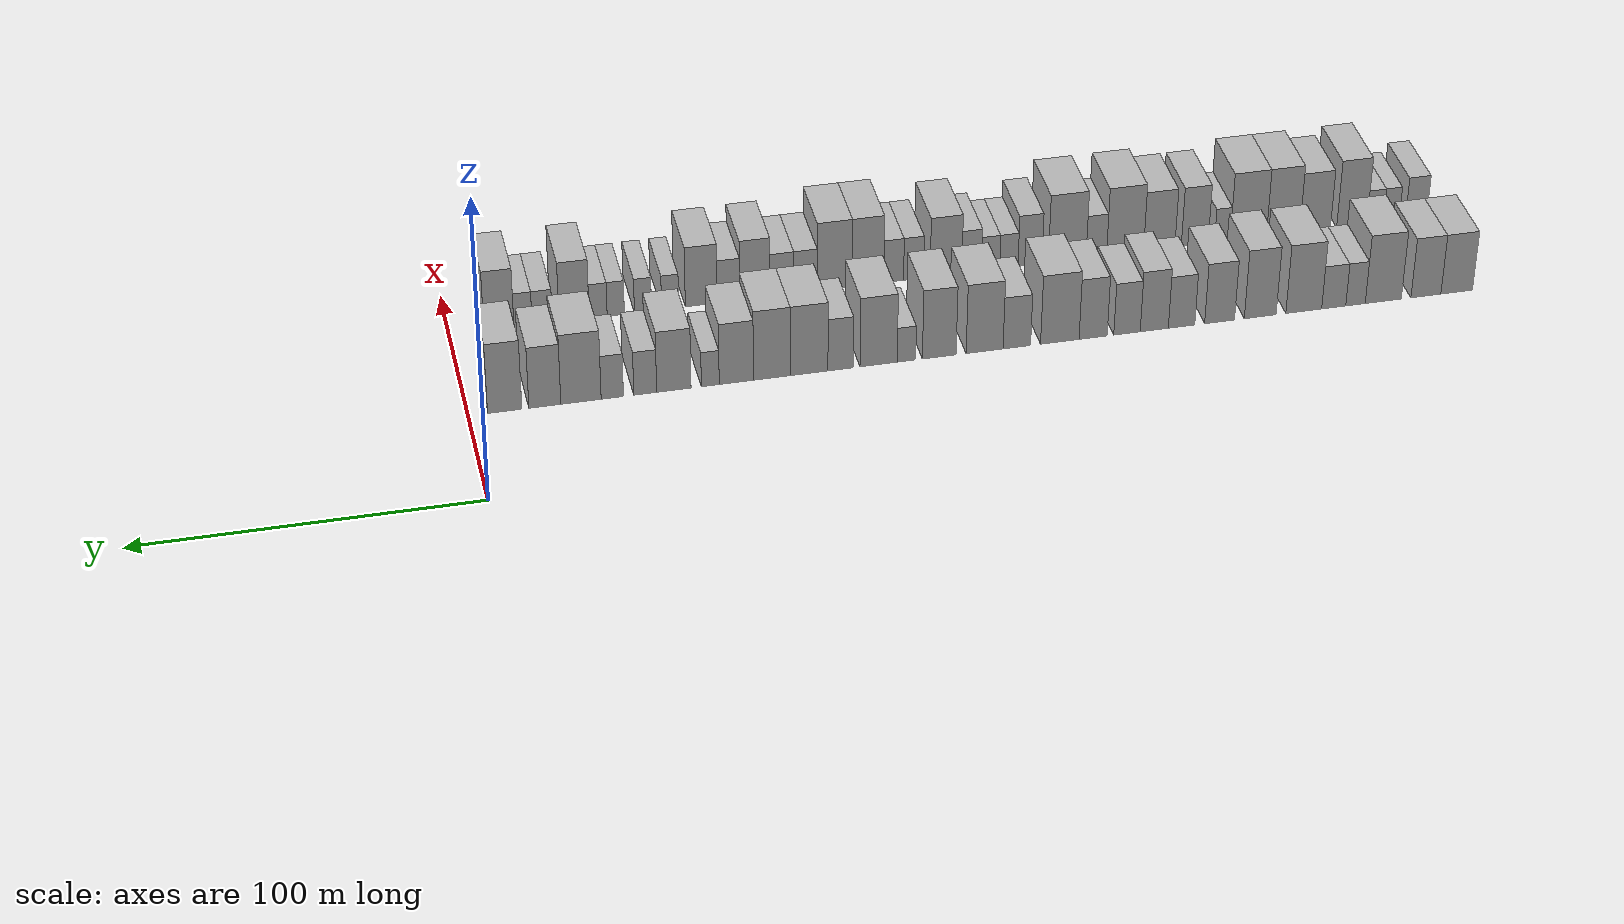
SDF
<sdf version="1.6">
 <world name="default">
  <model name="building_1">
   <static>1</static>
   <pose>50.0000 -295.0682 0 0.000000 0.000000 0.000000</pose>
   <link name="link">
    <pose>0 0 10.50 0 0 0</pose>
    <collision name="collision"><geometry><box><size>20.0000 9.8636 21.0000</size></box></geometry></collision>
    <visual name="visual">
     <cast_shadows>0</cast_shadows>
     <geometry><box><size>20.0000 9.8636 21.0000</size></box></geometry>
     <material>
      <script>
       <uri>model://HANNAS_wall/materials/scripts</uri>
       <uri>model://HANNAS_wall/materials/textures</uri>
       <name>vrc/HANNAS_wall</name>
      </script>
     </material>
    </visual>
   </link>
  </model>
  <model name="building_2">
   <static>1</static>
   <pose>50.0000 -285.4610 0 0.000000 0.000000 0.000000</pose>
   <link name="link">
    <pose>0 0 10.50 0 0 0</pose>
    <collision name="collision"><geometry><box><size>20.0000 9.3509 21.0000</size></box></geometry></collision>
    <visual name="visual">
     <cast_shadows>0</cast_shadows>
     <geometry><box><size>20.0000 9.3509 21.0000</size></box></geometry>
     <material>
      <script>
       <uri>model://HANNAS_wall/materials/scripts</uri>
       <uri>model://HANNAS_wall/materials/textures</uri>
       <name>vrc/HANNAS_wall</name>
      </script>
     </material>
    </visual>
   </link>
  </model>
  <model name="building_3">
   <static>1</static>
   <pose>50.0000 -272.1908 0 0.000000 0.000000 0.000000</pose>
   <link name="link">
    <pose>0 0 12.00 0 0 0</pose>
    <collision name="collision"><geometry><box><size>20.0000 11.1894 24.0000</size></box></geometry></collision>
    <visual name="visual">
     <cast_shadows>0</cast_shadows>
     <geometry><box><size>20.0000 11.1894 24.0000</size></box></geometry>
     <material>
      <script>
       <uri>model://HANNAS_wall/materials/scripts</uri>
       <uri>model://HANNAS_wall/materials/textures</uri>
       <name>vrc/HANNAS_wall</name>
      </script>
     </material>
    </visual>
   </link>
  </model>
  <model name="building_4">
   <static>1</static>
   <pose>50.0000 -263.5860 0 0.000000 0.000000 0.000000</pose>
   <link name="link">
    <pose>0 0 7.50 0 0 0</pose>
    <collision name="collision"><geometry><box><size>20.0000 6.0203 15.0000</size></box></geometry></collision>
    <visual name="visual">
     <cast_shadows>0</cast_shadows>
     <geometry><box><size>20.0000 6.0203 15.0000</size></box></geometry>
     <material>
      <script>
       <uri>model://HANNAS_wall/materials/scripts</uri>
       <uri>model://HANNAS_wall/materials/textures</uri>
       <name>vrc/HANNAS_wall</name>
      </script>
     </material>
    </visual>
   </link>
  </model>
  <model name="building_5">
   <static>1</static>
   <pose>50.0000 -256.8483 0 0.000000 0.000000 0.000000</pose>
   <link name="link">
    <pose>0 0 7.50 0 0 0</pose>
    <collision name="collision"><geometry><box><size>20.0000 7.4551 15.0000</size></box></geometry></collision>
    <visual name="visual">
     <cast_shadows>0</cast_shadows>
     <geometry><box><size>20.0000 7.4551 15.0000</size></box></geometry>
     <material>
      <script>
       <uri>model://HANNAS_wall/materials/scripts</uri>
       <uri>model://HANNAS_wall/materials/textures</uri>
       <name>vrc/HANNAS_wall</name>
      </script>
     </material>
    </visual>
   </link>
  </model>
  <model name="building_6">
   <static>1</static>
   <pose>50.0000 -247.6045 0 0.000000 0.000000 0.000000</pose>
   <link name="link">
    <pose>0 0 12.00 0 0 0</pose>
    <collision name="collision"><geometry><box><size>20.0000 11.0326 24.0000</size></box></geometry></collision>
    <visual name="visual">
     <cast_shadows>0</cast_shadows>
     <geometry><box><size>20.0000 11.0326 24.0000</size></box></geometry>
     <material>
      <script>
       <uri>model://HANNAS_wall/materials/scripts</uri>
       <uri>model://HANNAS_wall/materials/textures</uri>
       <name>vrc/HANNAS_wall</name>
      </script>
     </material>
    </visual>
   </link>
  </model>
  <model name="building_7">
   <static>1</static>
   <pose>50.0000 -234.2072 0 0.000000 0.000000 0.000000</pose>
   <link name="link">
    <pose>0 0 12.00 0 0 0</pose>
    <collision name="collision"><geometry><box><size>20.0000 9.7619 24.0000</size></box></geometry></collision>
    <visual name="visual">
     <cast_shadows>0</cast_shadows>
     <geometry><box><size>20.0000 9.7619 24.0000</size></box></geometry>
     <material>
      <script>
       <uri>model://HANNAS_wall/materials/scripts</uri>
       <uri>model://HANNAS_wall/materials/textures</uri>
       <name>vrc/HANNAS_wall</name>
      </script>
     </material>
    </visual>
   </link>
  </model>
  <model name="building_8">
   <static>1</static>
   <pose>50.0000 -221.7563 0 0.000000 0.000000 0.000000</pose>
   <link name="link">
    <pose>0 0 10.50 0 0 0</pose>
    <collision name="collision"><geometry><box><size>20.0000 9.1400 21.0000</size></box></geometry></collision>
    <visual name="visual">
     <cast_shadows>0</cast_shadows>
     <geometry><box><size>20.0000 9.1400 21.0000</size></box></geometry>
     <material>
      <script>
       <uri>model://HANNAS_wall/materials/scripts</uri>
       <uri>model://HANNAS_wall/materials/textures</uri>
       <name>vrc/HANNAS_wall</name>
      </script>
     </material>
    </visual>
   </link>
  </model>
  <model name="building_9">
   <static>1</static>
   <pose>50.0000 -210.1605 0 0.000000 0.000000 0.000000</pose>
   <link name="link">
    <pose>0 0 9.00 0 0 0</pose>
    <collision name="collision"><geometry><box><size>20.0000 8.0516 18.0000</size></box></geometry></collision>
    <visual name="visual">
     <cast_shadows>0</cast_shadows>
     <geometry><box><size>20.0000 8.0516 18.0000</size></box></geometry>
     <material>
      <script>
       <uri>model://HANNAS_wall/materials/scripts</uri>
       <uri>model://HANNAS_wall/materials/textures</uri>
       <name>vrc/HANNAS_wall</name>
      </script>
     </material>
    </visual>
   </link>
  </model>
  <model name="building_10">
   <static>1</static>
   <pose>50.0000 -201.8619 0 0.000000 0.000000 0.000000</pose>
   <link name="link">
    <pose>0 0 10.50 0 0 0</pose>
    <collision name="collision"><geometry><box><size>20.0000 8.5455 21.0000</size></box></geometry></collision>
    <visual name="visual">
     <cast_shadows>0</cast_shadows>
     <geometry><box><size>20.0000 8.5455 21.0000</size></box></geometry>
     <material>
      <script>
       <uri>model://HANNAS_wall/materials/scripts</uri>
       <uri>model://HANNAS_wall/materials/textures</uri>
       <name>vrc/HANNAS_wall</name>
      </script>
     </material>
    </visual>
   </link>
  </model>
  <model name="building_11">
   <static>1</static>
   <pose>50.0000 -193.5754 0 0.000000 0.000000 0.000000</pose>
   <link name="link">
    <pose>0 0 9.00 0 0 0</pose>
    <collision name="collision"><geometry><box><size>20.0000 8.0274 18.0000</size></box></geometry></collision>
    <visual name="visual">
     <cast_shadows>0</cast_shadows>
     <geometry><box><size>20.0000 8.0274 18.0000</size></box></geometry>
     <material>
      <script>
       <uri>model://HANNAS_wall/materials/scripts</uri>
       <uri>model://HANNAS_wall/materials/textures</uri>
       <name>vrc/HANNAS_wall</name>
      </script>
     </material>
    </visual>
   </link>
  </model>
  <model name="building_12">
   <static>1</static>
   <pose>50.0000 -183.3138 0 0.000000 0.000000 0.000000</pose>
   <link name="link">
    <pose>0 0 10.50 0 0 0</pose>
    <collision name="collision"><geometry><box><size>20.0000 8.4959 21.0000</size></box></geometry></collision>
    <visual name="visual">
     <cast_shadows>0</cast_shadows>
     <geometry><box><size>20.0000 8.4959 21.0000</size></box></geometry>
     <material>
      <script>
       <uri>model://HANNAS_wall/materials/scripts</uri>
       <uri>model://HANNAS_wall/materials/textures</uri>
       <name>vrc/HANNAS_wall</name>
      </script>
     </material>
    </visual>
   </link>
  </model>
  <model name="building_13">
   <static>1</static>
   <pose>50.0000 -173.2645 0 0.000000 0.000000 0.000000</pose>
   <link name="link">
    <pose>0 0 12.00 0 0 0</pose>
    <collision name="collision"><geometry><box><size>20.0000 11.6026 24.0000</size></box></geometry></collision>
    <visual name="visual">
     <cast_shadows>0</cast_shadows>
     <geometry><box><size>20.0000 11.6026 24.0000</size></box></geometry>
     <material>
      <script>
       <uri>model://HANNAS_wall/materials/scripts</uri>
       <uri>model://HANNAS_wall/materials/textures</uri>
       <name>vrc/HANNAS_wall</name>
      </script>
     </material>
    </visual>
   </link>
  </model>
  <model name="building_14">
   <static>1</static>
   <pose>50.0000 -160.3290 0 0.000000 0.000000 0.000000</pose>
   <link name="link">
    <pose>0 0 9.00 0 0 0</pose>
    <collision name="collision"><geometry><box><size>20.0000 8.2686 18.0000</size></box></geometry></collision>
    <visual name="visual">
     <cast_shadows>0</cast_shadows>
     <geometry><box><size>20.0000 8.2686 18.0000</size></box></geometry>
     <material>
      <script>
       <uri>model://HANNAS_wall/materials/scripts</uri>
       <uri>model://HANNAS_wall/materials/textures</uri>
       <name>vrc/HANNAS_wall</name>
      </script>
     </material>
    </visual>
   </link>
  </model>
  <model name="building_15">
   <static>1</static>
   <pose>50.0000 -150.6718 0 0.000000 0.000000 0.000000</pose>
   <link name="link">
    <pose>0 0 12.00 0 0 0</pose>
    <collision name="collision"><geometry><box><size>20.0000 11.0457 24.0000</size></box></geometry></collision>
    <visual name="visual">
     <cast_shadows>0</cast_shadows>
     <geometry><box><size>20.0000 11.0457 24.0000</size></box></geometry>
     <material>
      <script>
       <uri>model://HANNAS_wall/materials/scripts</uri>
       <uri>model://HANNAS_wall/materials/textures</uri>
       <name>vrc/HANNAS_wall</name>
      </script>
     </material>
    </visual>
   </link>
  </model>
  <model name="building_16">
   <static>1</static>
   <pose>50.0000 -137.1305 0 0.000000 0.000000 0.000000</pose>
   <link name="link">
    <pose>0 0 12.00 0 0 0</pose>
    <collision name="collision"><geometry><box><size>20.0000 10.0370 24.0000</size></box></geometry></collision>
    <visual name="visual">
     <cast_shadows>0</cast_shadows>
     <geometry><box><size>20.0000 10.0370 24.0000</size></box></geometry>
     <material>
      <script>
       <uri>model://HANNAS_wall/materials/scripts</uri>
       <uri>model://HANNAS_wall/materials/textures</uri>
       <name>vrc/HANNAS_wall</name>
      </script>
     </material>
    </visual>
   </link>
  </model>
  <model name="building_17">
   <static>1</static>
   <pose>50.0000 -127.3615 0 0.000000 0.000000 0.000000</pose>
   <link name="link">
    <pose>0 0 6.00 0 0 0</pose>
    <collision name="collision"><geometry><box><size>20.0000 5.5009 12.0000</size></box></geometry></collision>
    <visual name="visual">
     <cast_shadows>0</cast_shadows>
     <geometry><box><size>20.0000 5.5009 12.0000</size></box></geometry>
     <material>
      <script>
       <uri>model://HANNAS_wall/materials/scripts</uri>
       <uri>model://HANNAS_wall/materials/textures</uri>
       <name>vrc/HANNAS_wall</name>
      </script>
     </material>
    </visual>
   </link>
  </model>
  <model name="building_18">
   <static>1</static>
   <pose>50.0000 -119.1126 0 0.000000 0.000000 0.000000</pose>
   <link name="link">
    <pose>0 0 12.00 0 0 0</pose>
    <collision name="collision"><geometry><box><size>20.0000 10.9968 24.0000</size></box></geometry></collision>
    <visual name="visual">
     <cast_shadows>0</cast_shadows>
     <geometry><box><size>20.0000 10.9968 24.0000</size></box></geometry>
     <material>
      <script>
       <uri>model://HANNAS_wall/materials/scripts</uri>
       <uri>model://HANNAS_wall/materials/textures</uri>
       <name>vrc/HANNAS_wall</name>
      </script>
     </material>
    </visual>
   </link>
  </model>
  <model name="building_19">
   <static>1</static>
   <pose>50.0000 -107.8722 0 0.000000 0.000000 0.000000</pose>
   <link name="link">
    <pose>0 0 9.00 0 0 0</pose>
    <collision name="collision"><geometry><box><size>20.0000 7.4841 18.0000</size></box></geometry></collision>
    <visual name="visual">
     <cast_shadows>0</cast_shadows>
     <geometry><box><size>20.0000 7.4841 18.0000</size></box></geometry>
     <material>
      <script>
       <uri>model://HANNAS_wall/materials/scripts</uri>
       <uri>model://HANNAS_wall/materials/textures</uri>
       <name>vrc/HANNAS_wall</name>
      </script>
     </material>
    </visual>
   </link>
  </model>
  <model name="building_20">
   <static>1</static>
   <pose>50.0000 -98.5903 0 0.000000 0.000000 0.000000</pose>
   <link name="link">
    <pose>0 0 12.00 0 0 0</pose>
    <collision name="collision"><geometry><box><size>20.0000 11.0796 24.0000</size></box></geometry></collision>
    <visual name="visual">
     <cast_shadows>0</cast_shadows>
     <geometry><box><size>20.0000 11.0796 24.0000</size></box></geometry>
     <material>
      <script>
       <uri>model://HANNAS_wall/materials/scripts</uri>
       <uri>model://HANNAS_wall/materials/textures</uri>
       <name>vrc/HANNAS_wall</name>
      </script>
     </material>
    </visual>
   </link>
  </model>
  <model name="building_21">
   <static>1</static>
   <pose>50.0000 -87.6464 0 0.000000 0.000000 0.000000</pose>
   <link name="link">
    <pose>0 0 12.00 0 0 0</pose>
    <collision name="collision"><geometry><box><size>20.0000 10.8083 24.0000</size></box></geometry></collision>
    <visual name="visual">
     <cast_shadows>0</cast_shadows>
     <geometry><box><size>20.0000 10.8083 24.0000</size></box></geometry>
     <material>
      <script>
       <uri>model://HANNAS_wall/materials/scripts</uri>
       <uri>model://HANNAS_wall/materials/textures</uri>
       <name>vrc/HANNAS_wall</name>
      </script>
     </material>
    </visual>
   </link>
  </model>
  <model name="building_22">
   <static>1</static>
   <pose>50.0000 -77.2396 0 0.000000 0.000000 0.000000</pose>
   <link name="link">
    <pose>0 0 10.50 0 0 0</pose>
    <collision name="collision"><geometry><box><size>20.0000 10.0054 21.0000</size></box></geometry></collision>
    <visual name="visual">
     <cast_shadows>0</cast_shadows>
     <geometry><box><size>20.0000 10.0054 21.0000</size></box></geometry>
     <material>
      <script>
       <uri>model://HANNAS_wall/materials/scripts</uri>
       <uri>model://HANNAS_wall/materials/textures</uri>
       <name>vrc/HANNAS_wall</name>
      </script>
     </material>
    </visual>
   </link>
  </model>
  <model name="building_23">
   <static>1</static>
   <pose>50.0000 -69.6298 0 0.000000 0.000000 0.000000</pose>
   <link name="link">
    <pose>0 0 6.00 0 0 0</pose>
    <collision name="collision"><geometry><box><size>20.0000 5.2142 12.0000</size></box></geometry></collision>
    <visual name="visual">
     <cast_shadows>0</cast_shadows>
     <geometry><box><size>20.0000 5.2142 12.0000</size></box></geometry>
     <material>
      <script>
       <uri>model://HANNAS_wall/materials/scripts</uri>
       <uri>model://HANNAS_wall/materials/textures</uri>
       <name>vrc/HANNAS_wall</name>
      </script>
     </material>
    </visual>
   </link>
  </model>
  <model name="building_24">
   <static>1</static>
   <pose>50.0000 -59.0268 0 0.000000 0.000000 0.000000</pose>
   <link name="link">
    <pose>0 0 10.50 0 0 0</pose>
    <collision name="collision"><geometry><box><size>20.0000 9.9916 21.0000</size></box></geometry></collision>
    <visual name="visual">
     <cast_shadows>0</cast_shadows>
     <geometry><box><size>20.0000 9.9916 21.0000</size></box></geometry>
     <material>
      <script>
       <uri>model://HANNAS_wall/materials/scripts</uri>
       <uri>model://HANNAS_wall/materials/textures</uri>
       <name>vrc/HANNAS_wall</name>
      </script>
     </material>
    </visual>
   </link>
  </model>
  <model name="building_25">
   <static>1</static>
   <pose>50.0000 -50.7129 0 0.000000 0.000000 0.000000</pose>
   <link name="link">
    <pose>0 0 7.50 0 0 0</pose>
    <collision name="collision"><geometry><box><size>20.0000 6.6363 15.0000</size></box></geometry></collision>
    <visual name="visual">
     <cast_shadows>0</cast_shadows>
     <geometry><box><size>20.0000 6.6363 15.0000</size></box></geometry>
     <material>
      <script>
       <uri>model://HANNAS_wall/materials/scripts</uri>
       <uri>model://HANNAS_wall/materials/textures</uri>
       <name>vrc/HANNAS_wall</name>
      </script>
     </material>
    </visual>
   </link>
  </model>
  <model name="building_26">
   <static>1</static>
   <pose>50.0000 -41.1723 0 0.000000 0.000000 0.000000</pose>
   <link name="link">
    <pose>0 0 7.50 0 0 0</pose>
    <collision name="collision"><geometry><box><size>20.0000 6.4449 15.0000</size></box></geometry></collision>
    <visual name="visual">
     <cast_shadows>0</cast_shadows>
     <geometry><box><size>20.0000 6.4449 15.0000</size></box></geometry>
     <material>
      <script>
       <uri>model://HANNAS_wall/materials/scripts</uri>
       <uri>model://HANNAS_wall/materials/textures</uri>
       <name>vrc/HANNAS_wall</name>
      </script>
     </material>
    </visual>
   </link>
  </model>
  <model name="building_27">
   <static>1</static>
   <pose>50.0000 -32.1390 0 0.000000 0.000000 0.000000</pose>
   <link name="link">
    <pose>0 0 12.00 0 0 0</pose>
    <collision name="collision"><geometry><box><size>20.0000 11.6217 24.0000</size></box></geometry></collision>
    <visual name="visual">
     <cast_shadows>0</cast_shadows>
     <geometry><box><size>20.0000 11.6217 24.0000</size></box></geometry>
     <material>
      <script>
       <uri>model://HANNAS_wall/materials/scripts</uri>
       <uri>model://HANNAS_wall/materials/textures</uri>
       <name>vrc/HANNAS_wall</name>
      </script>
     </material>
    </visual>
   </link>
  </model>
  <model name="building_28">
   <static>1</static>
   <pose>50.0000 -21.7275 0 0.000000 0.000000 0.000000</pose>
   <link name="link">
    <pose>0 0 10.50 0 0 0</pose>
    <collision name="collision"><geometry><box><size>20.0000 9.2012 21.0000</size></box></geometry></collision>
    <visual name="visual">
     <cast_shadows>0</cast_shadows>
     <geometry><box><size>20.0000 9.2012 21.0000</size></box></geometry>
     <material>
      <script>
       <uri>model://HANNAS_wall/materials/scripts</uri>
       <uri>model://HANNAS_wall/materials/textures</uri>
       <name>vrc/HANNAS_wall</name>
      </script>
     </material>
    </visual>
   </link>
  </model>
  <model name="building_29">
   <static>1</static>
   <pose>50.0000 -10.2129 0 0.000000 0.000000 0.000000</pose>
   <link name="link">
    <pose>0 0 12.00 0 0 0</pose>
    <collision name="collision"><geometry><box><size>20.0000 9.8280 24.0000</size></box></geometry></collision>
    <visual name="visual">
     <cast_shadows>0</cast_shadows>
     <geometry><box><size>20.0000 9.8280 24.0000</size></box></geometry>
     <material>
      <script>
       <uri>model://HANNAS_wall/materials/scripts</uri>
       <uri>model://HANNAS_wall/materials/textures</uri>
       <name>vrc/HANNAS_wall</name>
      </script>
     </material>
    </visual>
   </link>
  </model>
  <model name="building_64">
   <static>1</static>
   <pose>90.0000 -296.5883 0 0.000000 0.000000 0.000000</pose>
   <link name="link">
    <pose>0 0 7.50 0 0 0</pose>
    <collision name="collision"><geometry><box><size>20.0000 6.8235 15.0000</size></box></geometry></collision>
    <visual name="visual">
     <cast_shadows>0</cast_shadows>
     <geometry><box><size>20.0000 6.8235 15.0000</size></box></geometry>
     <material>
      <script>
       <uri>model://HANNAS_wall/materials/scripts</uri>
       <uri>model://HANNAS_wall/materials/textures</uri>
       <name>vrc/HANNAS_wall</name>
      </script>
     </material>
    </visual>
   </link>
  </model>
  <model name="building_65">
   <static>1</static>
   <pose>90.0000 -288.6472 0 0.000000 0.000000 0.000000</pose>
   <link name="link">
    <pose>0 0 6.00 0 0 0</pose>
    <collision name="collision"><geometry><box><size>20.0000 5.0587 12.0000</size></box></geometry></collision>
    <visual name="visual">
     <cast_shadows>0</cast_shadows>
     <geometry><box><size>20.0000 5.0587 12.0000</size></box></geometry>
     <material>
      <script>
       <uri>model://HANNAS_wall/materials/scripts</uri>
       <uri>model://HANNAS_wall/materials/textures</uri>
       <name>vrc/HANNAS_wall</name>
      </script>
     </material>
    </visual>
   </link>
  </model>
  <model name="building_66">
   <static>1</static>
   <pose>90.0000 -283.4726 0 0.000000 0.000000 0.000000</pose>
   <link name="link">
    <pose>0 0 6.00 0 0 0</pose>
    <collision name="collision"><geometry><box><size>20.0000 5.2905 12.0000</size></box></geometry></collision>
    <visual name="visual">
     <cast_shadows>0</cast_shadows>
     <geometry><box><size>20.0000 5.2905 12.0000</size></box></geometry>
     <material>
      <script>
       <uri>model://HANNAS_wall/materials/scripts</uri>
       <uri>model://HANNAS_wall/materials/textures</uri>
       <name>vrc/HANNAS_wall</name>
      </script>
     </material>
    </visual>
   </link>
  </model>
  <model name="building_67">
   <static>1</static>
   <pose>90.0000 -276.0189 0 0.000000 0.000000 0.000000</pose>
   <link name="link">
    <pose>0 0 12.00 0 0 0</pose>
    <collision name="collision"><geometry><box><size>20.0000 9.6170 24.0000</size></box></geometry></collision>
    <visual name="visual">
     <cast_shadows>0</cast_shadows>
     <geometry><box><size>20.0000 9.6170 24.0000</size></box></geometry>
     <material>
      <script>
       <uri>model://HANNAS_wall/materials/scripts</uri>
       <uri>model://HANNAS_wall/materials/textures</uri>
       <name>vrc/HANNAS_wall</name>
      </script>
     </material>
    </visual>
   </link>
  </model>
  <model name="building_68">
   <static>1</static>
   <pose>90.0000 -264.3251 0 0.000000 0.000000 0.000000</pose>
   <link name="link">
    <pose>0 0 10.50 0 0 0</pose>
    <collision name="collision"><geometry><box><size>20.0000 9.7707 21.0000</size></box></geometry></collision>
    <visual name="visual">
     <cast_shadows>0</cast_shadows>
     <geometry><box><size>20.0000 9.7707 21.0000</size></box></geometry>
     <material>
      <script>
       <uri>model://HANNAS_wall/materials/scripts</uri>
       <uri>model://HANNAS_wall/materials/textures</uri>
       <name>vrc/HANNAS_wall</name>
      </script>
     </material>
    </visual>
   </link>
  </model>
  <model name="building_69">
   <static>1</static>
   <pose>90.0000 -254.1776 0 0.000000 0.000000 0.000000</pose>
   <link name="link">
    <pose>0 0 12.00 0 0 0</pose>
    <collision name="collision"><geometry><box><size>20.0000 10.5243 24.0000</size></box></geometry></collision>
    <visual name="visual">
     <cast_shadows>0</cast_shadows>
     <geometry><box><size>20.0000 10.5243 24.0000</size></box></geometry>
     <material>
      <script>
       <uri>model://HANNAS_wall/materials/scripts</uri>
       <uri>model://HANNAS_wall/materials/textures</uri>
       <name>vrc/HANNAS_wall</name>
      </script>
     </material>
    </visual>
   </link>
  </model>
  <model name="building_70">
   <static>1</static>
   <pose>90.0000 -243.1728 0 0.000000 0.000000 0.000000</pose>
   <link name="link">
    <pose>0 0 12.00 0 0 0</pose>
    <collision name="collision"><geometry><box><size>20.0000 11.4852 24.0000</size></box></geometry></collision>
    <visual name="visual">
     <cast_shadows>0</cast_shadows>
     <geometry><box><size>20.0000 11.4852 24.0000</size></box></geometry>
     <material>
      <script>
       <uri>model://HANNAS_wall/materials/scripts</uri>
       <uri>model://HANNAS_wall/materials/textures</uri>
       <name>vrc/HANNAS_wall</name>
      </script>
     </material>
    </visual>
   </link>
  </model>
  <model name="building_71">
   <static>1</static>
   <pose>90.0000 -234.9726 0 0.000000 0.000000 0.000000</pose>
   <link name="link">
    <pose>0 0 6.00 0 0 0</pose>
    <collision name="collision"><geometry><box><size>20.0000 4.9153 12.0000</size></box></geometry></collision>
    <visual name="visual">
     <cast_shadows>0</cast_shadows>
     <geometry><box><size>20.0000 4.9153 12.0000</size></box></geometry>
     <material>
      <script>
       <uri>model://HANNAS_wall/materials/scripts</uri>
       <uri>model://HANNAS_wall/materials/textures</uri>
       <name>vrc/HANNAS_wall</name>
      </script>
     </material>
    </visual>
   </link>
  </model>
  <model name="building_72">
   <static>1</static>
   <pose>90.0000 -226.2939 0 0.000000 0.000000 0.000000</pose>
   <link name="link">
    <pose>0 0 10.50 0 0 0</pose>
    <collision name="collision"><geometry><box><size>20.0000 8.4420 21.0000</size></box></geometry></collision>
    <visual name="visual">
     <cast_shadows>0</cast_shadows>
     <geometry><box><size>20.0000 8.4420 21.0000</size></box></geometry>
     <material>
      <script>
       <uri>model://HANNAS_wall/materials/scripts</uri>
       <uri>model://HANNAS_wall/materials/textures</uri>
       <name>vrc/HANNAS_wall</name>
      </script>
     </material>
    </visual>
   </link>
  </model>
  <model name="building_73">
   <static>1</static>
   <pose>90.0000 -215.1644 0 0.000000 0.000000 0.000000</pose>
   <link name="link">
    <pose>0 0 10.50 0 0 0</pose>
    <collision name="collision"><geometry><box><size>20.0000 9.8170 21.0000</size></box></geometry></collision>
    <visual name="visual">
     <cast_shadows>0</cast_shadows>
     <geometry><box><size>20.0000 9.8170 21.0000</size></box></geometry>
     <material>
      <script>
       <uri>model://HANNAS_wall/materials/scripts</uri>
       <uri>model://HANNAS_wall/materials/textures</uri>
       <name>vrc/HANNAS_wall</name>
      </script>
     </material>
    </visual>
   </link>
  </model>
  <model name="building_74">
   <static>1</static>
   <pose>90.0000 -204.4727 0 0.000000 0.000000 0.000000</pose>
   <link name="link">
    <pose>0 0 12.00 0 0 0</pose>
    <collision name="collision"><geometry><box><size>20.0000 11.5665 24.0000</size></box></geometry></collision>
    <visual name="visual">
     <cast_shadows>0</cast_shadows>
     <geometry><box><size>20.0000 11.5665 24.0000</size></box></geometry>
     <material>
      <script>
       <uri>model://HANNAS_wall/materials/scripts</uri>
       <uri>model://HANNAS_wall/materials/textures</uri>
       <name>vrc/HANNAS_wall</name>
      </script>
     </material>
    </visual>
   </link>
  </model>
  <model name="building_75">
   <static>1</static>
   <pose>90.0000 -195.4898 0 0.000000 0.000000 0.000000</pose>
   <link name="link">
    <pose>0 0 7.50 0 0 0</pose>
    <collision name="collision"><geometry><box><size>20.0000 6.3992 15.0000</size></box></geometry></collision>
    <visual name="visual">
     <cast_shadows>0</cast_shadows>
     <geometry><box><size>20.0000 6.3992 15.0000</size></box></geometry>
     <material>
      <script>
       <uri>model://HANNAS_wall/materials/scripts</uri>
       <uri>model://HANNAS_wall/materials/textures</uri>
       <name>vrc/HANNAS_wall</name>
      </script>
     </material>
    </visual>
   </link>
  </model>
  <model name="building_76">
   <static>1</static>
   <pose>90.0000 -186.4300 0 0.000000 0.000000 0.000000</pose>
   <link name="link">
    <pose>0 0 12.00 0 0 0</pose>
    <collision name="collision"><geometry><box><size>20.0000 11.7204 24.0000</size></box></geometry></collision>
    <visual name="visual">
     <cast_shadows>0</cast_shadows>
     <geometry><box><size>20.0000 11.7204 24.0000</size></box></geometry>
     <material>
      <script>
       <uri>model://HANNAS_wall/materials/scripts</uri>
       <uri>model://HANNAS_wall/materials/textures</uri>
       <name>vrc/HANNAS_wall</name>
      </script>
     </material>
    </visual>
   </link>
  </model>
  <model name="building_77">
   <static>1</static>
   <pose>90.0000 -174.8717 0 0.000000 0.000000 0.000000</pose>
   <link name="link">
    <pose>0 0 9.00 0 0 0</pose>
    <collision name="collision"><geometry><box><size>20.0000 7.3961 18.0000</size></box></geometry></collision>
    <visual name="visual">
     <cast_shadows>0</cast_shadows>
     <geometry><box><size>20.0000 7.3961 18.0000</size></box></geometry>
     <material>
      <script>
       <uri>model://HANNAS_wall/materials/scripts</uri>
       <uri>model://HANNAS_wall/materials/textures</uri>
       <name>vrc/HANNAS_wall</name>
      </script>
     </material>
    </visual>
   </link>
  </model>
  <model name="building_78">
   <static>1</static>
   <pose>90.0000 -168.3524 0 0.000000 0.000000 0.000000</pose>
   <link name="link">
    <pose>0 0 6.00 0 0 0</pose>
    <collision name="collision"><geometry><box><size>20.0000 5.6425 12.0000</size></box></geometry></collision>
    <visual name="visual">
     <cast_shadows>0</cast_shadows>
     <geometry><box><size>20.0000 5.6425 12.0000</size></box></geometry>
     <material>
      <script>
       <uri>model://HANNAS_wall/materials/scripts</uri>
       <uri>model://HANNAS_wall/materials/textures</uri>
       <name>vrc/HANNAS_wall</name>
      </script>
     </material>
    </visual>
   </link>
  </model>
  <model name="building_79">
   <static>1</static>
   <pose>90.0000 -162.7315 0 0.000000 0.000000 0.000000</pose>
   <link name="link">
    <pose>0 0 6.00 0 0 0</pose>
    <collision name="collision"><geometry><box><size>20.0000 5.5993 12.0000</size></box></geometry></collision>
    <visual name="visual">
     <cast_shadows>0</cast_shadows>
     <geometry><box><size>20.0000 5.5993 12.0000</size></box></geometry>
     <material>
      <script>
       <uri>model://HANNAS_wall/materials/scripts</uri>
       <uri>model://HANNAS_wall/materials/textures</uri>
       <name>vrc/HANNAS_wall</name>
      </script>
     </material>
    </visual>
   </link>
  </model>
  <model name="building_80">
   <static>1</static>
   <pose>90.0000 -156.8718 0 0.000000 0.000000 0.000000</pose>
   <link name="link">
    <pose>0 0 7.50 0 0 0</pose>
    <collision name="collision"><geometry><box><size>20.0000 6.1201 15.0000</size></box></geometry></collision>
    <visual name="visual">
     <cast_shadows>0</cast_shadows>
     <geometry><box><size>20.0000 6.1201 15.0000</size></box></geometry>
     <material>
      <script>
       <uri>model://HANNAS_wall/materials/scripts</uri>
       <uri>model://HANNAS_wall/materials/textures</uri>
       <name>vrc/HANNAS_wall</name>
      </script>
     </material>
    </visual>
   </link>
  </model>
  <model name="building_81">
   <static>1</static>
   <pose>90.0000 -148.9505 0 0.000000 0.000000 0.000000</pose>
   <link name="link">
    <pose>0 0 10.50 0 0 0</pose>
    <collision name="collision"><geometry><box><size>20.0000 9.7224 21.0000</size></box></geometry></collision>
    <visual name="visual">
     <cast_shadows>0</cast_shadows>
     <geometry><box><size>20.0000 9.7224 21.0000</size></box></geometry>
     <material>
      <script>
       <uri>model://HANNAS_wall/materials/scripts</uri>
       <uri>model://HANNAS_wall/materials/textures</uri>
       <name>vrc/HANNAS_wall</name>
      </script>
     </material>
    </visual>
   </link>
  </model>
  <model name="building_82">
   <static>1</static>
   <pose>90.0000 -139.0359 0 0.000000 0.000000 0.000000</pose>
   <link name="link">
    <pose>0 0 7.50 0 0 0</pose>
    <collision name="collision"><geometry><box><size>20.0000 6.1068 15.0000</size></box></geometry></collision>
    <visual name="visual">
     <cast_shadows>0</cast_shadows>
     <geometry><box><size>20.0000 6.1068 15.0000</size></box></geometry>
     <material>
      <script>
       <uri>model://HANNAS_wall/materials/scripts</uri>
       <uri>model://HANNAS_wall/materials/textures</uri>
       <name>vrc/HANNAS_wall</name>
      </script>
     </material>
    </visual>
   </link>
  </model>
  <model name="building_83">
   <static>1</static>
   <pose>90.0000 -132.9724 0 0.000000 0.000000 0.000000</pose>
   <link name="link">
    <pose>0 0 7.50 0 0 0</pose>
    <collision name="collision"><geometry><box><size>20.0000 6.0204 15.0000</size></box></geometry></collision>
    <visual name="visual">
     <cast_shadows>0</cast_shadows>
     <geometry><box><size>20.0000 6.0204 15.0000</size></box></geometry>
     <material>
      <script>
       <uri>model://HANNAS_wall/materials/scripts</uri>
       <uri>model://HANNAS_wall/materials/textures</uri>
       <name>vrc/HANNAS_wall</name>
      </script>
     </material>
    </visual>
   </link>
  </model>
  <model name="building_84">
   <static>1</static>
   <pose>90.0000 -125.1064 0 0.000000 0.000000 0.000000</pose>
   <link name="link">
    <pose>0 0 12.00 0 0 0</pose>
    <collision name="collision"><geometry><box><size>20.0000 9.7116 24.0000</size></box></geometry></collision>
    <visual name="visual">
     <cast_shadows>0</cast_shadows>
     <geometry><box><size>20.0000 9.7116 24.0000</size></box></geometry>
     <material>
      <script>
       <uri>model://HANNAS_wall/materials/scripts</uri>
       <uri>model://HANNAS_wall/materials/textures</uri>
       <name>vrc/HANNAS_wall</name>
      </script>
     </material>
    </visual>
   </link>
  </model>
  <model name="building_85">
   <static>1</static>
   <pose>90.0000 -114.9411 0 0.000000 0.000000 0.000000</pose>
   <link name="link">
    <pose>0 0 12.00 0 0 0</pose>
    <collision name="collision"><geometry><box><size>20.0000 10.6190 24.0000</size></box></geometry></collision>
    <visual name="visual">
     <cast_shadows>0</cast_shadows>
     <geometry><box><size>20.0000 10.6190 24.0000</size></box></geometry>
     <material>
      <script>
       <uri>model://HANNAS_wall/materials/scripts</uri>
       <uri>model://HANNAS_wall/materials/textures</uri>
       <name>vrc/HANNAS_wall</name>
      </script>
     </material>
    </visual>
   </link>
  </model>
  <model name="building_86">
   <static>1</static>
   <pose>90.0000 -106.1062 0 0.000000 0.000000 0.000000</pose>
   <link name="link">
    <pose>0 0 7.50 0 0 0</pose>
    <collision name="collision"><geometry><box><size>20.0000 7.0507 15.0000</size></box></geometry></collision>
    <visual name="visual">
     <cast_shadows>0</cast_shadows>
     <geometry><box><size>20.0000 7.0507 15.0000</size></box></geometry>
     <material>
      <script>
       <uri>model://HANNAS_wall/materials/scripts</uri>
       <uri>model://HANNAS_wall/materials/textures</uri>
       <name>vrc/HANNAS_wall</name>
      </script>
     </material>
    </visual>
   </link>
  </model>
  <model name="building_87">
   <static>1</static>
   <pose>90.0000 -98.9560 0 0.000000 0.000000 0.000000</pose>
   <link name="link">
    <pose>0 0 7.50 0 0 0</pose>
    <collision name="collision"><geometry><box><size>20.0000 7.2495 15.0000</size></box></geometry></collision>
    <visual name="visual">
     <cast_shadows>0</cast_shadows>
     <geometry><box><size>20.0000 7.2495 15.0000</size></box></geometry>
     <material>
      <script>
       <uri>model://HANNAS_wall/materials/scripts</uri>
       <uri>model://HANNAS_wall/materials/textures</uri>
       <name>vrc/HANNAS_wall</name>
      </script>
     </material>
    </visual>
   </link>
  </model>
  <model name="building_88">
   <static>1</static>
   <pose>90.0000 -90.7748 0 0.000000 0.000000 0.000000</pose>
   <link name="link">
    <pose>0 0 10.50 0 0 0</pose>
    <collision name="collision"><geometry><box><size>20.0000 9.1130 21.0000</size></box></geometry></collision>
    <visual name="visual">
     <cast_shadows>0</cast_shadows>
     <geometry><box><size>20.0000 9.1130 21.0000</size></box></geometry>
     <material>
      <script>
       <uri>model://HANNAS_wall/materials/scripts</uri>
       <uri>model://HANNAS_wall/materials/textures</uri>
       <name>vrc/HANNAS_wall</name>
      </script>
     </material>
    </visual>
   </link>
  </model>
  <model name="building_89">
   <static>1</static>
   <pose>90.0000 -82.8375 0 0.000000 0.000000 0.000000</pose>
   <link name="link">
    <pose>0 0 7.50 0 0 0</pose>
    <collision name="collision"><geometry><box><size>20.0000 6.7614 15.0000</size></box></geometry></collision>
    <visual name="visual">
     <cast_shadows>0</cast_shadows>
     <geometry><box><size>20.0000 6.7614 15.0000</size></box></geometry>
     <material>
      <script>
       <uri>model://HANNAS_wall/materials/scripts</uri>
       <uri>model://HANNAS_wall/materials/textures</uri>
       <name>vrc/HANNAS_wall</name>
      </script>
     </material>
    </visual>
   </link>
  </model>
  <model name="building_90">
   <static>1</static>
   <pose>90.0000 -74.6619 0 0.000000 0.000000 0.000000</pose>
   <link name="link">
    <pose>0 0 10.50 0 0 0</pose>
    <collision name="collision"><geometry><box><size>20.0000 9.5898 21.0000</size></box></geometry></collision>
    <visual name="visual">
     <cast_shadows>0</cast_shadows>
     <geometry><box><size>20.0000 9.5898 21.0000</size></box></geometry>
     <material>
      <script>
       <uri>model://HANNAS_wall/materials/scripts</uri>
       <uri>model://HANNAS_wall/materials/textures</uri>
       <name>vrc/HANNAS_wall</name>
      </script>
     </material>
    </visual>
   </link>
  </model>
  <model name="building_91">
   <static>1</static>
   <pose>90.0000 -65.3116 0 0.000000 0.000000 0.000000</pose>
   <link name="link">
    <pose>0 0 6.00 0 0 0</pose>
    <collision name="collision"><geometry><box><size>20.0000 5.1110 12.0000</size></box></geometry></collision>
    <visual name="visual">
     <cast_shadows>0</cast_shadows>
     <geometry><box><size>20.0000 5.1110 12.0000</size></box></geometry>
     <material>
      <script>
       <uri>model://HANNAS_wall/materials/scripts</uri>
       <uri>model://HANNAS_wall/materials/textures</uri>
       <name>vrc/HANNAS_wall</name>
      </script>
     </material>
    </visual>
   </link>
  </model>
  <model name="building_92">
   <static>1</static>
   <pose>90.0000 -57.1979 0 0.000000 0.000000 0.000000</pose>
   <link name="link">
    <pose>0 0 6.00 0 0 0</pose>
    <collision name="collision"><geometry><box><size>20.0000 5.1163 12.0000</size></box></geometry></collision>
    <visual name="visual">
     <cast_shadows>0</cast_shadows>
     <geometry><box><size>20.0000 5.1163 12.0000</size></box></geometry>
     <material>
      <script>
       <uri>model://HANNAS_wall/materials/scripts</uri>
       <uri>model://HANNAS_wall/materials/textures</uri>
       <name>vrc/HANNAS_wall</name>
      </script>
     </material>
    </visual>
   </link>
  </model>
  <model name="building_93">
   <static>1</static>
   <pose>90.0000 -49.0708 0 0.000000 0.000000 0.000000</pose>
   <link name="link">
    <pose>0 0 6.00 0 0 0</pose>
    <collision name="collision"><geometry><box><size>20.0000 5.1380 12.0000</size></box></geometry></collision>
    <visual name="visual">
     <cast_shadows>0</cast_shadows>
     <geometry><box><size>20.0000 5.1380 12.0000</size></box></geometry>
     <material>
      <script>
       <uri>model://HANNAS_wall/materials/scripts</uri>
       <uri>model://HANNAS_wall/materials/textures</uri>
       <name>vrc/HANNAS_wall</name>
      </script>
     </material>
    </visual>
   </link>
  </model>
  <model name="building_94">
   <static>1</static>
   <pose>90.0000 -43.8301 0 0.000000 0.000000 0.000000</pose>
   <link name="link">
    <pose>0 0 6.00 0 0 0</pose>
    <collision name="collision"><geometry><box><size>20.0000 5.3434 12.0000</size></box></geometry></collision>
    <visual name="visual">
     <cast_shadows>0</cast_shadows>
     <geometry><box><size>20.0000 5.3434 12.0000</size></box></geometry>
     <material>
      <script>
       <uri>model://HANNAS_wall/materials/scripts</uri>
       <uri>model://HANNAS_wall/materials/textures</uri>
       <name>vrc/HANNAS_wall</name>
      </script>
     </material>
    </visual>
   </link>
  </model>
  <model name="building_95">
   <static>1</static>
   <pose>90.0000 -36.6864 0 0.000000 0.000000 0.000000</pose>
   <link name="link">
    <pose>0 0 10.50 0 0 0</pose>
    <collision name="collision"><geometry><box><size>20.0000 8.9439 21.0000</size></box></geometry></collision>
    <visual name="visual">
     <cast_shadows>0</cast_shadows>
     <geometry><box><size>20.0000 8.9439 21.0000</size></box></geometry>
     <material>
      <script>
       <uri>model://HANNAS_wall/materials/scripts</uri>
       <uri>model://HANNAS_wall/materials/textures</uri>
       <name>vrc/HANNAS_wall</name>
      </script>
     </material>
    </visual>
   </link>
  </model>
  <model name="building_96">
   <static>1</static>
   <pose>90.0000 -27.2246 0 0.000000 0.000000 0.000000</pose>
   <link name="link">
    <pose>0 0 6.00 0 0 0</pose>
    <collision name="collision"><geometry><box><size>20.0000 5.9799 12.0000</size></box></geometry></collision>
    <visual name="visual">
     <cast_shadows>0</cast_shadows>
     <geometry><box><size>20.0000 5.9799 12.0000</size></box></geometry>
     <material>
      <script>
       <uri>model://HANNAS_wall/materials/scripts</uri>
       <uri>model://HANNAS_wall/materials/textures</uri>
       <name>vrc/HANNAS_wall</name>
      </script>
     </material>
    </visual>
   </link>
  </model>
  <model name="building_97">
   <static>1</static>
   <pose>90.0000 -21.5496 0 0.000000 0.000000 0.000000</pose>
   <link name="link">
    <pose>0 0 6.00 0 0 0</pose>
    <collision name="collision"><geometry><box><size>20.0000 5.3701 12.0000</size></box></geometry></collision>
    <visual name="visual">
     <cast_shadows>0</cast_shadows>
     <geometry><box><size>20.0000 5.3701 12.0000</size></box></geometry>
     <material>
      <script>
       <uri>model://HANNAS_wall/materials/scripts</uri>
       <uri>model://HANNAS_wall/materials/textures</uri>
       <name>vrc/HANNAS_wall</name>
      </script>
     </material>
    </visual>
   </link>
  </model>
  <model name="building_98">
   <static>1</static>
   <pose>90.0000 -14.4273 0 0.000000 0.000000 0.000000</pose>
   <link name="link">
    <pose>0 0 10.50 0 0 0</pose>
    <collision name="collision"><geometry><box><size>20.0000 8.8746 21.0000</size></box></geometry></collision>
    <visual name="visual">
     <cast_shadows>0</cast_shadows>
     <geometry><box><size>20.0000 8.8746 21.0000</size></box></geometry>
     <material>
      <script>
       <uri>model://HANNAS_wall/materials/scripts</uri>
       <uri>model://HANNAS_wall/materials/textures</uri>
       <name>vrc/HANNAS_wall</name>
      </script>
     </material>
    </visual>
   </link>
  </model>
 </world>
</sdf>
